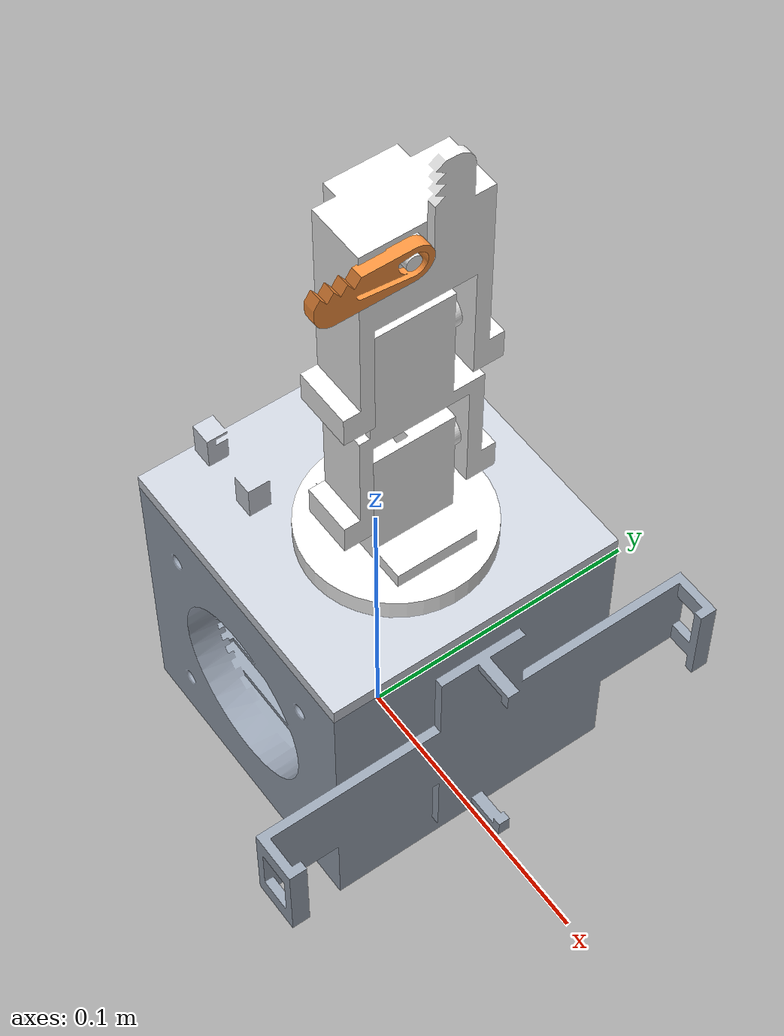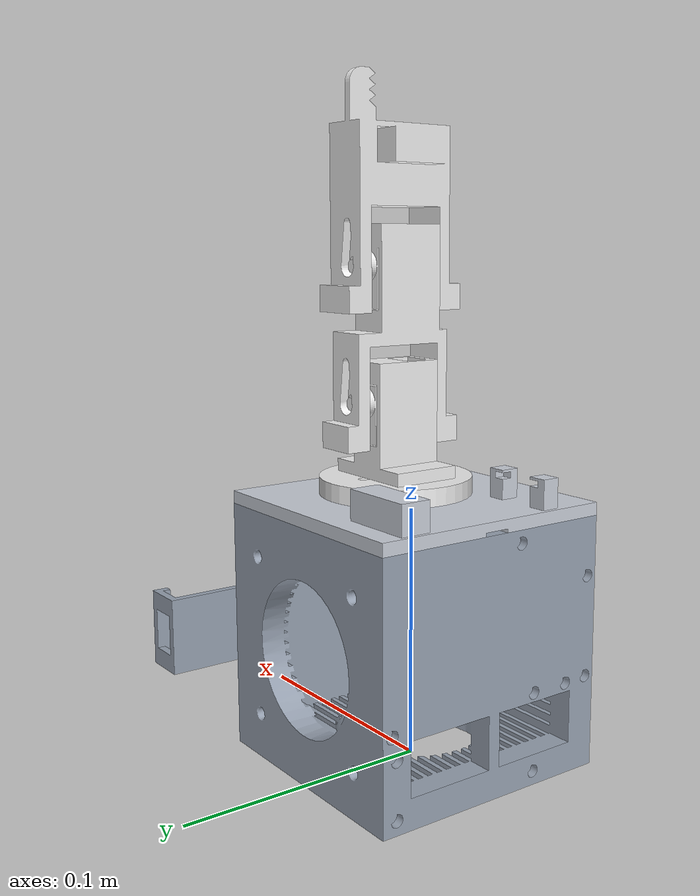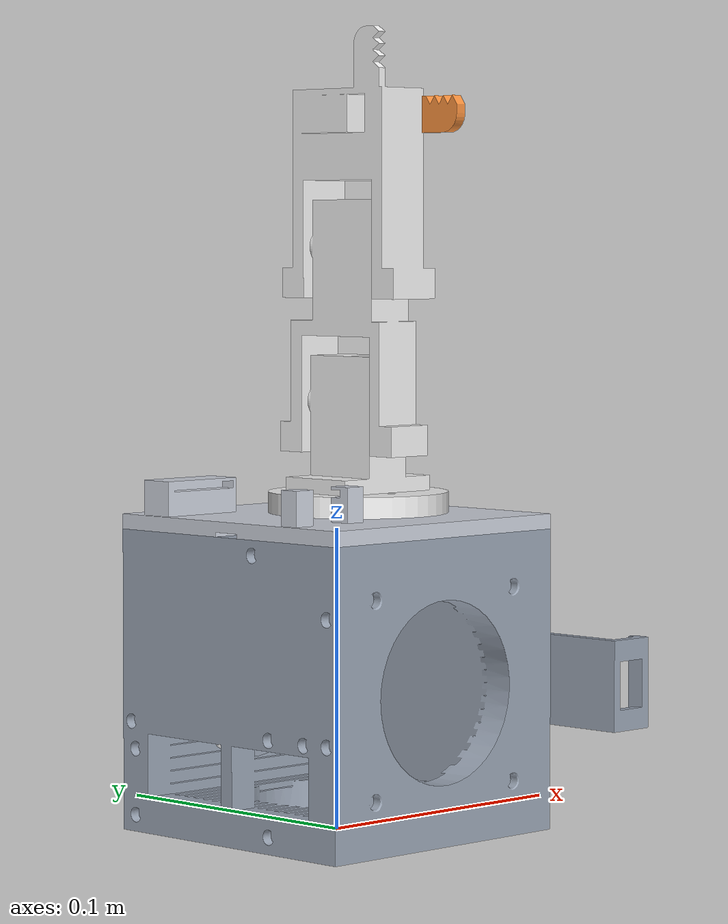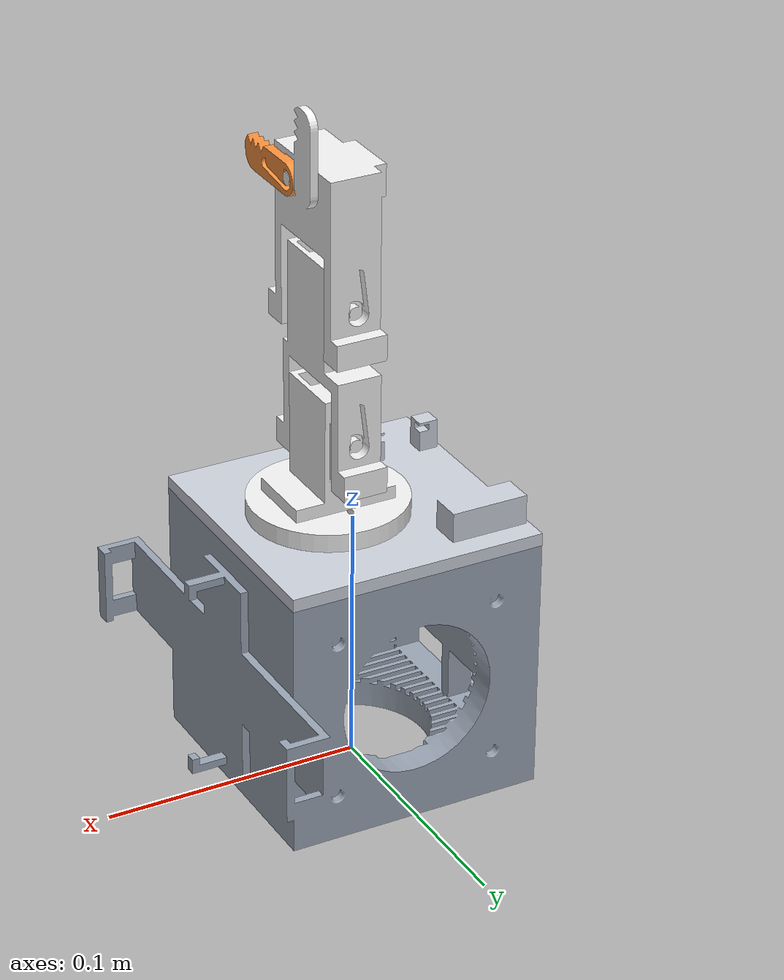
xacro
<?xml version="1.0"?>
<robot name="smabo" xmlns:xacro="http://www.ros.org/wiki/xacro">

  <xacro:arg name="arm"        default="true"/>
  <xacro:arg name="hand"       default="false"/>
  <xacro:arg name="breadboard" default="false"/>
  <xacro:arg name="mount"      default="none"/>

  <xacro:include filename="$(find smabo_description)/urdf/smabo_base.xacro"/>
  <xacro:include filename="$(find smabo_description)/urdf/smabo_arm.xacro"/>
  <xacro:include filename="$(find smabo_description)/urdf/smabo_hand.xacro"/>
  <xacro:include filename="$(find smabo_description)/urdf/smabo_tt_motor.xacro"/>
  <xacro:include filename="$(find smabo_description)/urdf/smabo_neck.xacro"/>

  <xacro:smabo_base/>

  <xacro:if value="$(arg arm)">
    <xacro:smabo_arm/>
  </xacro:if>
  <xacro:if value="$(arg hand)">
    <xacro:smabo_hand/>
  </xacro:if>
  <xacro:if value="$(arg breadboard)">
    <xacro:smabo_breadboard/>
  </xacro:if>

  <xacro:if value="${'$(arg mount)' == 'tt_motor'}">
    <xacro:smabo_tt_motor/>
    <!-- LD06 lidar: TF frame only, placed on top of the base until its mount is in the CAD -->
    <link name="laser"/>
    <joint name="laser_joint" type="fixed">
      <parent link="base_link"/>
      <child  link="laser"/>
      <origin xyz="0 0 0.115" rpy="0 0 0"/>
    </joint>
  </xacro:if>
  <xacro:if value="${'$(arg mount)' == 'neck'}">
    <xacro:smabo_neck/>
  </xacro:if>

</robot>

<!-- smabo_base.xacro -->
<robot xmlns:xacro="http://www.ros.org/wiki/xacro">

  <xacro:property name="smabo_mesh_dir" value="package://smabo_description/meshes"/>
  <xacro:property name="smabo_deg90"    value="1.5708"/>

  <material name="smabo_base"><color rgba="0.60 0.64 0.70 1.0"/></material>
  <material name="smabo_part"><color rgba="0.95 0.95 0.95 1.0"/></material>
  <material name="smabo_mount"><color rgba="0.80 0.82 0.86 1.0"/></material>
  <material name="smabo_accent"><color rgba="0.98 0.57 0.24 1.0"/></material>
  <material name="smabo_dark"><color rgba="0.15 0.15 0.18 1.0"/></material>

  <xacro:macro name="smabo_mesh_link" params="name module material mass">
    <link name="${name}">
      <visual>
        <geometry><mesh filename="${smabo_mesh_dir}/${module}/visual/${name}.stl"/></geometry>
        <material name="${material}"/>
      </visual>
      <collision>
        <geometry><mesh filename="${smabo_mesh_dir}/${module}/collision/${name}.stl"/></geometry>
      </collision>
      <inertial>
        <mass value="${mass}"/>
        <inertia ixx="1e-5" ixy="0" ixz="0" iyy="1e-5" iyz="0" izz="1e-5"/>
      </inertial>
    </link>
  </xacro:macro>

  <xacro:macro name="smabo_base">
    <xacro:smabo_mesh_link name="base_link" module="smabo_base" material="smabo_base" mass="0.30"/>
  </xacro:macro>

  <!-- rear breadboard / PCA9685 mounts (smabo_base_breadboard.step), used by the
       hand, mobile and neck configurations -->
  <xacro:macro name="smabo_breadboard">
    <xacro:smabo_mesh_link name="breadboard_link" module="smabo_breadboard" material="smabo_mount" mass="0.02"/>
    <joint name="breadboard_joint" type="fixed">
      <parent link="base_link"/>
      <child  link="breadboard_link"/>
      <origin xyz="0 0 0" rpy="0 0 0"/>
    </joint>
  </xacro:macro>

</robot>

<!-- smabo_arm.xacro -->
<robot xmlns:xacro="http://www.ros.org/wiki/xacro">

  <!-- arm on top of the smabo base: arm_joint_1 is 10 mm in front of the base centre -->
  <xacro:macro name="smabo_arm" params="parent:=base_link">
    <joint name="arm_mount_joint" type="fixed">
      <parent link="${parent}"/>
      <child  link="arm_base_link"/>
      <origin xyz="0.010 0 0.090" rpy="0 0 0"/>
    </joint>

    <xacro:smabo_mesh_link name="arm_base_link" module="smabo_arm" material="smabo_mount"  mass="0.03"/>
    <xacro:smabo_mesh_link name="arm_link_1"    module="smabo_arm" material="smabo_part"   mass="0.03"/>
    <xacro:smabo_mesh_link name="arm_link_2"    module="smabo_arm" material="smabo_part"   mass="0.03"/>
    <xacro:smabo_mesh_link name="arm_link_3"    module="smabo_arm" material="smabo_part"   mass="0.03"/>
    <xacro:smabo_mesh_link name="arm_link_4"    module="smabo_arm" material="smabo_accent" mass="0.005"/>

    <joint name="arm_joint_1" type="revolute">
      <parent link="arm_base_link"/>
      <child  link="arm_link_1"/>
      <origin xyz="0 0 0.015" rpy="0 0 0"/>
      <axis xyz="0 0 1"/>
      <limit lower="${-smabo_deg90}" upper="${smabo_deg90}" effort="0.2" velocity="2.0"/>
    </joint>

    <joint name="arm_joint_2" type="revolute">
      <parent link="arm_link_1"/>
      <child  link="arm_link_2"/>
      <origin xyz="0 0 0.0365" rpy="0 0 0"/>
      <axis xyz="0 1 0"/>
      <limit lower="${-smabo_deg90}" upper="${smabo_deg90}" effort="0.2" velocity="2.0"/>
    </joint>

    <joint name="arm_joint_3" type="revolute">
      <parent link="arm_link_2"/>
      <child  link="arm_link_3"/>
      <origin xyz="0 0 0.0515" rpy="0 0 0"/>
      <axis xyz="0 1 0"/>
      <limit lower="${-smabo_deg90}" upper="${smabo_deg90}" effort="0.2" velocity="2.0"/>
    </joint>

    <!-- the finger mesh is modelled closed, so the joint frame is pre-rotated
         +90 deg (open): q = -90 deg gives the closed STEP pose -->
    <joint name="arm_joint_4" type="revolute">
      <parent link="arm_link_3"/>
      <child  link="arm_link_4"/>
      <origin xyz="0.0125 -0.0048 0.04345" rpy="${smabo_deg90} 0 0"/>
      <axis xyz="1 0 0"/>
      <limit lower="${-smabo_deg90}" upper="${smabo_deg90}" effort="0.2" velocity="2.0"/>
    </joint>

    <!-- tool frame between the closed fingertips (on arm_link_3, so the 3-DOF
         arm group ends here and the gripper stays a separate group) -->
    <link name="arm_tool0"/>
    <joint name="arm_tool0_joint" type="fixed">
      <parent link="arm_link_3"/>
      <child  link="arm_tool0"/>
      <origin xyz="0.0125 0.0012 0.06745" rpy="0 0 0"/>
    </joint>
  </xacro:macro>

</robot>
